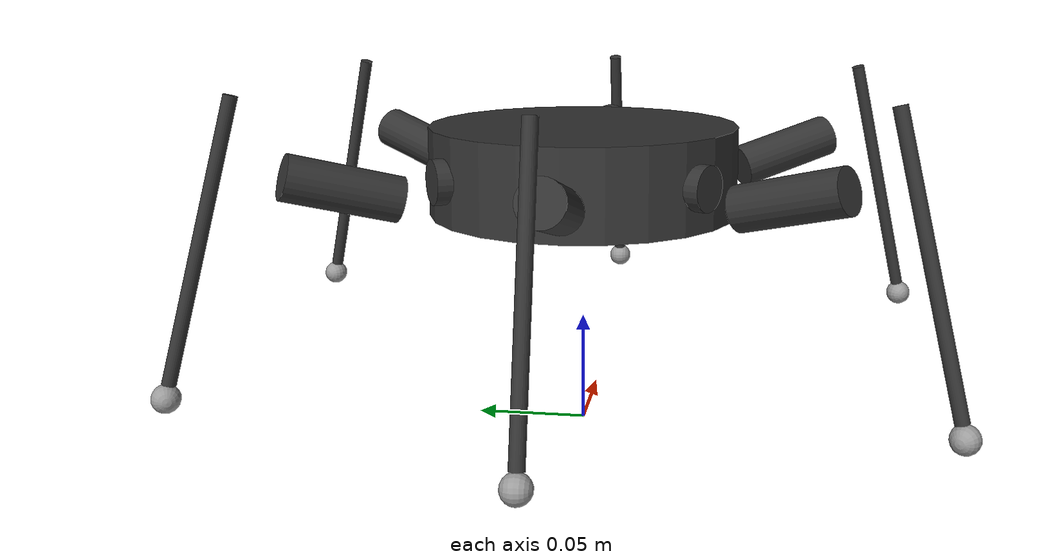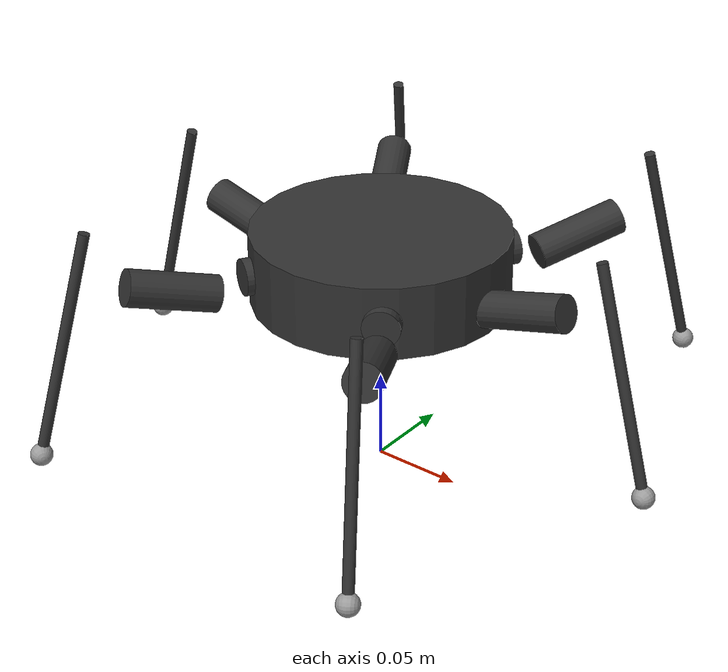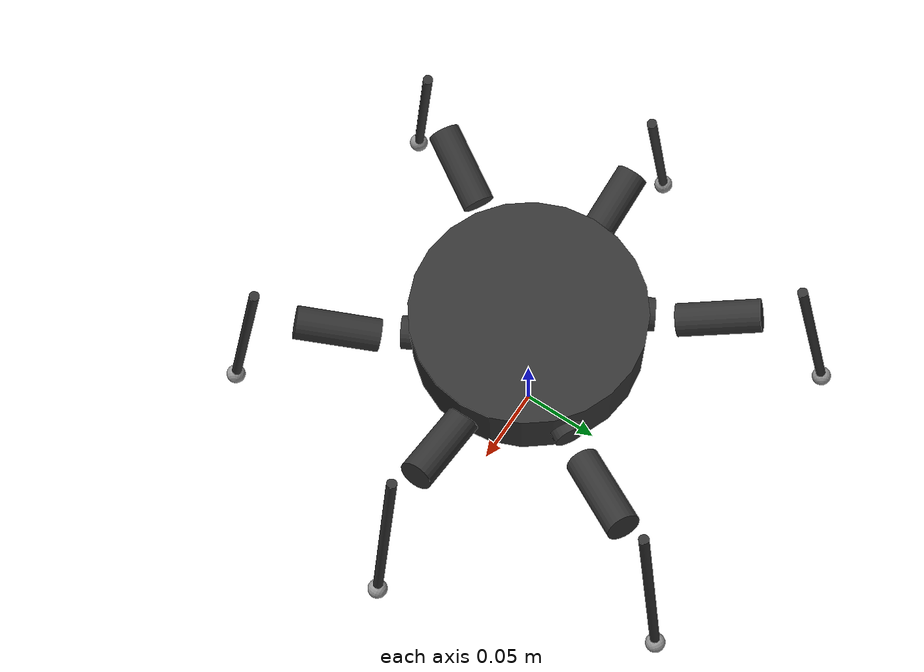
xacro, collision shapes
<?xml version="1.0" ?>
<robot name="Hexapod"  xmlns:xacro="http://www.ros.org/wiki/xacro">
  <xacro:include filename="/home/jichen/paper11_ws/src/hexapod/robot/hexapod_urdf.xacro" />

  <link name="world"/>

  <joint name="world_connect" type="fixed">
    <parent link="world"/>
    <child link="base_link"/>
    <origin xyz="0 0 0.1" rpy="0 0 0" />
  </joint>

  <link name="base_link"/>

    <xacro:hexapod parent="base_link">
        <origin xyz="0 0 0" rpy="0 0 0" />
    </xacro:hexapod>

  <gazebo>
    <plugin filename="libgazebo_ros_control.so" name="gazebo_ros_control">
      <robotNamespace>/hexapod</robotNamespace>
    </plugin>

    <plugin name="p3d_base_controller" filename="libgazebo_ros_p3d.so">
      <alwaysOn>true</alwaysOn>
      <updateRate>50.0</updateRate>
      <bodyName>base_link</bodyName>
      <topicName>ground_truth/state</topicName>
      <gaussianNoise>0.0</gaussianNoise>
      <frameName>world</frameName>
      <xyzOffsets>0 0 0</xyzOffsets>
      <rpyOffsets>0 0 0</rpyOffsets>
    </plugin>

  </gazebo>

</robot>

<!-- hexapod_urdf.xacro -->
<robot xmlns:xacro="http://www.ros.org/wiki/xacro">
<xacro:property name="M_PI" value="3.1415926535897931" />
<xacro:macro name="hexapod" params="parent *origin">
<xacro:property name="M_PI" value="3.1415926535897931" />

      <joint name="j_hexapod_attachment" type="fixed">
        <parent link="${parent}"/>
        <child link="MP_BODY"/>
        <origin xyz="0 0 0" rpy="0 0 0.0" />
        <insert_block name="origin" />
      </joint>

      <link name="MP_BODY">
        <inertial>
          <origin xyz="0 0 0.02" rpy="0 0 0" />
          <mass value="0.8"/>
          <inertia ixx="0.0010867"  ixy="0"  ixz="0" iyy="0.0010867" iyz="0" izz="0.00196" />
        </inertial>
        <visual>
          <origin xyz="-0.071 -0.075 0.041" rpy="-1.57 0 0" />
          <geometry>
            <!--box size="0.102 0.109 0.106" /-->
            <mesh filename="package://hexapod/meshes/test4.STL"  scale="0.001 0.001 0.001"/>
          </geometry>
          <material name="Grey">
            <color rgba="0.20 0.20 0.20 1.0"/>
          </material>
        </visual>
        <collision>
          <origin xyz="0 0 0.02" rpy="0 0 0" />
          <geometry>
            <cylinder radius="0.07" length="0.04"/>
          </geometry>

        </collision>
      </link>

      <gazebo reference="MP_BODY">
        <material>Gazebo/Grey</material>
      </gazebo>

    <xacro:leg_l xyz="0.038 0.046 0.02"  rpy="0 ${M_PI} ${-M_PI/2}" r1p1y1="0 ${M_PI} ${-M_PI/3}" suffix="rf"/>
    <xacro:leg_l xyz="0.038 0.0  0.02"  rpy="0 ${M_PI} ${-M_PI/2}" r1p1y1="0 ${M_PI} 0" suffix="rm"/>
    <xacro:leg_l xyz="0.038 -0.046  0.02"  rpy="0 ${M_PI} ${-M_PI/2}" r1p1y1="0 ${M_PI} ${M_PI/3}" suffix="rr"/>

    <xacro:leg_l xyz="-0.038 0.046  0.02"  rpy="0 ${-M_PI} ${3*M_PI/2}" r1p1y1="0 ${M_PI} ${M_PI + M_PI/3}" suffix="lf"/>
    <xacro:leg_l xyz="-0.038 0.0  0.02"  rpy="0 ${-M_PI} ${3*M_PI/2}" r1p1y1="0 ${M_PI} ${M_PI}" suffix="lm"/>
    <xacro:leg_l xyz="-0.038 -0.046  0.02"  rpy="0 ${-M_PI} ${3*M_PI/2}" r1p1y1="0 ${M_PI} ${M_PI - M_PI/3}" suffix="lr"/>

</xacro:macro>

 <xacro:macro name="utilities" params="xyz rpy">
  <link name="util_1">
    <visual>
      <origin xyz="0 0 0" rpy="0 0 0"  />
      <geometry>
        <box size="0.14 0.08 0.06" />
      </geometry>
      <material name="Grey">
        <color rgba="0.20 0.20 0.20 1.0"/>
      </material>
    </visual>
    <collision>

      <origin xyz="0 0 0" rpy="0 0 0"  />

      <geometry>
        <box size="0.14 0.08 0.06" />
      </geometry>

    </collision>
  </link>

  <link name="util_2">
    <visual>
      <origin xyz="0 0 0" rpy="0 0 0"  />
      <geometry>
        <box size="0.04 0.06 0.02" />
      </geometry>

    </visual>
    <collision>
      <origin xyz="0 0 0" rpy="0 0 0"  />
      <geometry>
        <box size="0.14 0.08 0.02" />
      </geometry>
    </collision>
  </link>

  <joint name="j_util_1_attachment" type="fixed">
        <parent link="MP_BODY"/>
        <child link="util_1"/>
        <origin xyz="${xyz}" rpy="${rpy}" />

  </joint>

  <joint name="j_util_2_attachment" type="fixed">
        <parent link="util_1"/>
        <child link="util_2"/>
        <origin xyz="0 0.066 -0.02" rpy="0 0 0" />

  </joint>

 </xacro:macro>

 <xacro:macro name="leg_l" params="xyz rpy r1p1y1 suffix">

  <link name="c1_${suffix}">
    <inertial>
      <origin xyz="0 0 0" rpy="0 0 0"  />
      <mass value="0.024357719"/>
     <inertia ixx="0.0051411124"  ixy="-0.00057530255"  ixz="-0.000024729049" iyy="0.0081915737" iyz="-0.000019223094" izz="0.0011379812" />
    </inertial>
    <visual>
      <origin xyz="0 0.012 0" rpy="0 0 0"  />
      <geometry>
        <!--box size="0.045 0.022 0.0325" /-->
        <mesh filename="package://hexapod/meshes/right1_Link.STL"  scale="1 1 1"/>
      </geometry>
      <material name="Grey">
        <color rgba="0.20 0.20 0.20 1.0"/>
      </material>
    </visual>
    <collision>
      <origin rpy="1.57 0 0" xyz="0 0.0 0" />

      <geometry>
        <cylinder radius="0.01" length="0.03"/>
      </geometry>

    </collision>
  </link>

  <link name="connect_${suffix}">
    <origin xyz="0 0 0" rpy="0 0 0"  />
    <inertial>
      <origin xyz="0 0 0" />
      <mass value="0.97559947"/>
      <inertia ixx="3.1081800"  ixy="-0.25460189"  ixz="2.0318174" iyy="6.3787776" iyz="0.16417863" izz="5.3316425" />
    </inertial>
  </link>

  <joint name="j_connect_${suffix}" type="fixed">
    <parent link="MP_BODY"/>
    <child link="connect_${suffix}"/>
    <origin xyz="${xyz}" rpy="${rpy}" />

  </joint>

  <link name="thigh_${suffix}">
    <inertial>
      <origin rpy="0 1.57 0" xyz="0 0.0 0" />
      <mass value="0.024357719"/>
     <inertia ixx="0.0051411124"  ixy="-0.00057530255"  ixz="-0.000024729049" iyy="0.0081915737" iyz="-0.000019223094" izz="0.0011379812" />
    </inertial>
    <visual>
      <origin xyz="0 0 -0.004" rpy="0 0 0"  />
      <geometry>
        <!--box size="0.045 0.022 0.0325" /-->
        <mesh filename="package://hexapod/meshes/LinkThigh.STL"  scale="1 1 1"/>
      </geometry>
      <material name="Grey">
        <color rgba="0.20 0.20 0.20 1.0"/>
      </material>
    </visual>
    <collision>
      <origin rpy="0 1.57 0" xyz="0 0.0 0" />

      <geometry>
        <cylinder radius="0.01" length="0.05"/>
      </geometry>

    </collision>
  </link>

  <link name="tibia_${suffix}">
    <inertial>
      <origin rpy="0 1.57 0.524" xyz="-0.027 -0.017 0" />

      <mass value="0.002"/>
      <inertia ixx="0.0000024045"  ixy="0"  ixz="0" iyy="0.0000024045" iyz="0" izz="0.000000009" />
    </inertial>
    <visual>
      <origin rpy="0 0 0" xyz="0 0 0"/>
      <geometry>
        <!--box size="0.045 0.022 0.0325" /-->
        <mesh filename="package://hexapod/meshes/NewTibia.STL"  scale="0.001 0.001 0.001"/>
      </geometry>
      <material name="Grey">
        <color rgba="0.20 0.20 0.20 1.0"/>
      </material>
    </visual>
    <collision>
      <origin rpy="0 1.57 0.524" xyz="-0.027 -0.017 0" />
      <geometry>
        <cylinder radius="0.003" length="0.12"/>
      </geometry>
    </collision>
  </link>

  <link name="tibia_e_${suffix}">
        <visual>
        <origin xyz="0 0 0" rpy="0 0 0"/>
        <geometry><sphere radius=".006"/></geometry>
        </visual>
        <collision><geometry><sphere radius=".006"/></geometry></collision>
        <inertial>
            <origin xyz="0 0 0" rpy="0 0 0"/>
            <mass value="0.01"/>
            <inertia ixx="0.00144" ixy="0.0" ixz="0.0" iyy="0.00144"  iyz="0.0" izz="0.00144"/>
        </inertial>
  </link>

  <!-- here are an edit including a ball joint -->

  <joint name="j_c1_${suffix}" type="revolute">
    <parent link="connect_${suffix}"/>
    <child link="c1_${suffix}"/>
    <origin xyz="0 0 0" rpy="${r1p1y1}" />
    <axis xyz="0 0 -1" />
    <limit effort="5.8" velocity="10" lower="-2.6179939" upper="2.6179939" />
    <dynamics damping="0.5" friction="0.0" />
  </joint>

  <joint name="j_thigh_${suffix}" type="revolute">
    <parent link="c1_${suffix}"/>
    <child link="thigh_${suffix}"/>
    <origin xyz="0 0.053 0" rpy="${M_PI/2} ${-M_PI/12} ${M_PI/2}" />
    <axis xyz="0 0 1" />
    <limit effort="5.8" velocity="10" lower="-2.6179939" upper="2.6179939" />
    <dynamics damping="0.5" friction="0.0" />
  </joint>

  <joint name="j_tibia_${suffix}" type="revolute">
    <parent link="thigh_${suffix}"/>
    <child link="tibia_${suffix}"/>

    <origin rpy="3.141592653589793 0 ${2*M_PI/3}" xyz="0.0525 0 0"/>
    <axis xyz="0 0 -1" />
    <limit effort="5.8" velocity="10" lower="-2.5" upper="2.5" />
    <dynamics damping="0.5" friction="0.0" />
  </joint>

  <joint name="j_tibia_e_${suffix}" type="fixed">
    <parent link="tibia_${suffix}"/>
    <child link="tibia_e_${suffix}"/>

    <origin rpy="0 0 0" xyz="-0.084 -0.05 0"/>
  </joint>

   <transmission name="t_c1_${suffix}">
    <type>transmission_interface/SimpleTransmission</type>
    <joint name="j_c1_${suffix}">
      <hardwareInterface>hardware_interface/EffortJointInterface</hardwareInterface>
    </joint>
    <actuator name="m_c1_${suffix}">
      <hardwareInterface>hardware_interface/EffortJointInterface</hardwareInterface>
      <mechanicalReduction>1</mechanicalReduction>
    </actuator>
  </transmission>

   <transmission name="t_thigh_${suffix}">
    <type>transmission_interface/SimpleTransmission</type>
    <joint name="j_thigh_${suffix}">
      <hardwareInterface>hardware_interface/EffortJointInterface</hardwareInterface>
    </joint>
    <actuator name="m_thigh_${suffix}">
      <hardwareInterface>hardware_interface/EffortJointInterface</hardwareInterface>
      <mechanicalReduction>1</mechanicalReduction>
    </actuator>
  </transmission>

   <transmission name="t_tibia_${suffix}">
    <type>transmission_interface/SimpleTransmission</type>
    <joint name="j_tibia_${suffix}">
      <hardwareInterface>hardware_interface/EffortJointInterface</hardwareInterface>
    </joint>
    <actuator name="m_tibia_${suffix}">
      <hardwareInterface>hardware_interface/EffortJointInterface</hardwareInterface>
      <mechanicalReduction>1</mechanicalReduction>
    </actuator>
  </transmission>

  <gazebo reference="MP_BODY">
    <mu1>0.61</mu1>
    <mu2>0.61</mu2>
  </gazebo>

  <gazebo reference="c1_${suffix}">
    <material>Gazebo/Grey</material>
    <mu1>0.61</mu1>
    <mu2>0.61</mu2>
  </gazebo>

  <gazebo reference="connect_${suffix}">
    <mu1>0.61</mu1>
    <mu2>0.61</mu2>
  </gazebo>

  <gazebo reference="thigh_${suffix}">
    <material>Gazebo/Grey</material>
    <mu1>0.61</mu1>
    <mu2>0.61</mu2>
  </gazebo>

  <gazebo reference="tibia_${suffix}">
    <material>Gazebo/Grey</material>
   <mu1>0.61</mu1>
    <mu2>0.61</mu2>

  </gazebo>

  <gazebo reference="tibia_e_${suffix}">
    <material>Gazebo/Grey</material>
    <mu1>10</mu1>
    <mu2>10</mu2>

    <kp>1000000.0</kp>
    <kd>10.0</kd>
  </gazebo>

</xacro:macro>

</robot>
